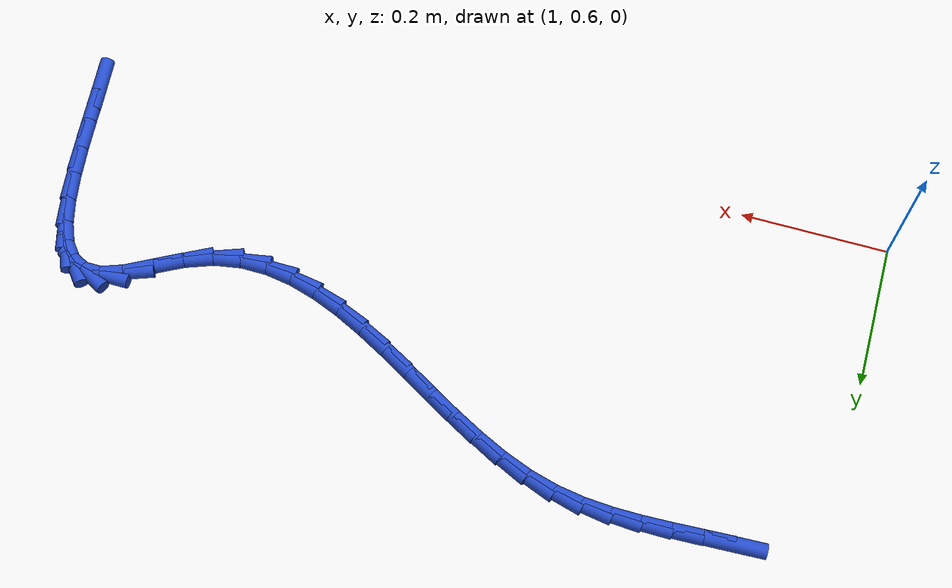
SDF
<sdf version="1.6">
 <world name="default">
  <model name="ground_plane">
   <static>1</static>
   <link name="link">
    <collision name="collision">
     <geometry><plane><normal>0 0 1</normal><size>100 100</size></plane></geometry>
     <surface><friction><ode><mu>100</mu><mu2>50</mu2></ode></friction></surface>
    </collision>
    <visual name="visual">
     <cast_shadows>0</cast_shadows>
     <geometry><plane><normal>0 0 1</normal><size>100 100</size></plane></geometry>
     <material>
      <script><uri>file://media/materials/scripts/gazebo.material</uri><name>Gazebo/WhiteGlow</name></script>
     </material>
    </visual>
   </link>
  </model>
  <model name="line">
   <link name="link_48">
    <pose>1.11131119343783 1.0561336119023135 0.01 0 1.57 0.05185267464040737</pose>
    <collision name="collision">
     <geometry><cylinder><radius>0.01</radius><length>0.08</length></cylinder></geometry>
    </collision>
    <visual name="visual">
     <material>
      <script><name>Gazebo/Blue</name><uri>file://media/materials/scripts/gazebo.material</uri></script>
     </material>
     <geometry><cylinder><radius>0.01</radius><length>0.08</length></cylinder></geometry>
    </visual>
   </link>
   <link name="link_49">
    <pose>1.151036047870899 1.0581952999391078 0.01 0 1.57 0.060190064966267096</pose>
    <collision name="collision">
     <geometry><cylinder><radius>0.01</radius><length>0.08</length></cylinder></geometry>
    </collision>
    <visual name="visual">
     <material>
      <script><name>Gazebo/Blue</name><uri>file://media/materials/scripts/gazebo.material</uri></script>
     </material>
     <geometry><cylinder><radius>0.01</radius><length>0.08</length></cylinder></geometry>
    </visual>
   </link>
   <link name="link_50">
    <pose>1.1900952740820598 1.060549120497224 0.01 0 1.57 0.04475264383107879</pose>
    <collision name="collision">
     <geometry><cylinder><radius>0.01</radius><length>0.08</length></cylinder></geometry>
    </collision>
    <visual name="visual">
     <material>
      <script><name>Gazebo/Blue</name><uri>file://media/materials/scripts/gazebo.material</uri></script>
     </material>
     <geometry><cylinder><radius>0.01</radius><length>0.08</length></cylinder></geometry>
    </visual>
   </link>
   <link name="link_51">
    <pose>1.2286015604026614 1.0622735299831996 0.01 0 1.57 0.004556650593403881</pose>
    <collision name="collision">
     <geometry><cylinder><radius>0.01</radius><length>0.08</length></cylinder></geometry>
    </collision>
    <visual name="visual">
     <material>
      <script><name>Gazebo/Blue</name><uri>file://media/materials/scripts/gazebo.material</uri></script>
     </material>
     <geometry><cylinder><radius>0.01</radius><length>0.08</length></cylinder></geometry>
    </visual>
   </link>
   <link name="link_52">
    <pose>1.266667595164052 1.0624469848035698 0.01 0 1.57 -0.060845220206124255</pose>
    <collision name="collision">
     <geometry><cylinder><radius>0.01</radius><length>0.08</length></cylinder></geometry>
    </collision>
    <visual name="visual">
     <material>
      <script><name>Gazebo/Blue</name><uri>file://media/materials/scripts/gazebo.material</uri></script>
     </material>
     <geometry><cylinder><radius>0.01</radius><length>0.08</length></cylinder></geometry>
    </visual>
   </link>
   <link name="link_53">
    <pose>1.30440606669758 1.0601479413648711 0.01 0 1.57 -0.1505718089831201</pose>
    <collision name="collision">
     <geometry><cylinder><radius>0.01</radius><length>0.08</length></cylinder></geometry>
    </collision>
    <visual name="visual">
     <material>
      <script><name>Gazebo/Blue</name><uri>file://media/materials/scripts/gazebo.material</uri></script>
     </material>
     <geometry><cylinder><radius>0.01</radius><length>0.08</length></cylinder></geometry>
    </visual>
   </link>
   <link name="link_54">
    <pose>1.3419296633345938 1.0544548560736393 0.01 0 1.57 -0.2596410427195901</pose>
    <collision name="collision">
     <geometry><cylinder><radius>0.01</radius><length>0.08</length></cylinder></geometry>
    </collision>
    <visual name="visual">
     <material>
      <script><name>Gazebo/Blue</name><uri>file://media/materials/scripts/gazebo.material</uri></script>
     </material>
     <geometry><cylinder><radius>0.01</radius><length>0.08</length></cylinder></geometry>
    </visual>
   </link>
   <link name="link_55">
    <pose>1.379347017007223 1.0445154143154243 0.01 0 1.57 -0.3595870499645327</pose>
    <collision name="collision">
     <geometry><cylinder><radius>0.01</radius><length>0.08</length></cylinder></geometry>
    </collision>
    <visual name="visual">
     <material>
      <script><name>Gazebo/Blue</name><uri>file://media/materials/scripts/gazebo.material</uri></script>
     </material>
     <geometry><cylinder><radius>0.01</radius><length>0.08</length></cylinder></geometry>
    </visual>
   </link>
   <link name="link_56">
    <pose>1.4167085922039224 1.03047002248785 0.01 0 1.57 -0.43344471882655145</pose>
    <collision name="collision">
     <geometry><cylinder><radius>0.01</radius><length>0.08</length></cylinder></geometry>
    </collision>
    <visual name="visual">
     <material>
      <script><name>Gazebo/Blue</name><uri>file://media/materials/scripts/gazebo.material</uri></script>
     </material>
     <geometry><cylinder><radius>0.01</radius><length>0.08</length></cylinder></geometry>
    </visual>
   </link>
   <link name="link_57">
    <pose>1.4540213348639976 1.013201801046844 0.01 0 1.57 -0.4839385955201175</pose>
    <collision name="collision">
     <geometry><cylinder><radius>0.01</radius><length>0.08</length></cylinder></geometry>
    </collision>
    <visual name="visual">
     <material>
      <script><name>Gazebo/Blue</name><uri>file://media/materials/scripts/gazebo.material</uri></script>
     </material>
     <geometry><cylinder><radius>0.01</radius><length>0.08</length></cylinder></geometry>
    </visual>
   </link>
   <link name="link_58">
    <pose>1.4912911418374926 0.9936117748444716 0.01 0 1.57 -0.5137630004267688</pose>
    <collision name="collision">
     <geometry><cylinder><radius>0.01</radius><length>0.08</length></cylinder></geometry>
    </collision>
    <visual name="visual">
     <material>
      <script><name>Gazebo/Blue</name><uri>file://media/materials/scripts/gazebo.material</uri></script>
     </material>
     <geometry><cylinder><radius>0.01</radius><length>0.08</length></cylinder></geometry>
    </visual>
   </link>
   <link name="link_59">
    <pose>1.528523909974453 0.972600968732796 0.01 0 1.57 -0.52465035442699</pose>
    <collision name="collision">
     <geometry><cylinder><radius>0.01</radius><length>0.08</length></cylinder></geometry>
    </collision>
    <visual name="visual">
     <material>
      <script><name>Gazebo/Blue</name><uri>file://media/materials/scripts/gazebo.material</uri></script>
     </material>
     <geometry><cylinder><radius>0.01</radius><length>0.08</length></cylinder></geometry>
    </visual>
   </link>
   <link name="link_60">
    <pose>1.565725536124922 0.951070407563882 0.01 0 1.57 -0.5172307353071692</pose>
    <collision name="collision">
     <geometry><cylinder><radius>0.01</radius><length>0.08</length></cylinder></geometry>
    </collision>
    <visual name="visual">
     <material>
      <script><name>Gazebo/Blue</name><uri>file://media/materials/scripts/gazebo.material</uri></script>
     </material>
     <geometry><cylinder><radius>0.01</radius><length>0.08</length></cylinder></geometry>
    </visual>
   </link>
   <link name="link_61">
    <pose>1.6029019171389443 0.9299211161897938 0.01 0 1.57 -0.49100255553708755</pose>
    <collision name="collision">
     <geometry><cylinder><radius>0.01</radius><length>0.08</length></cylinder></geometry>
    </collision>
    <visual name="visual">
     <material>
      <script><name>Gazebo/Blue</name><uri>file://media/materials/scripts/gazebo.material</uri></script>
     </material>
     <geometry><cylinder><radius>0.01</radius><length>0.08</length></cylinder></geometry>
    </visual>
   </link>
   <link name="link_62">
    <pose>1.6400589498665648 0.9100541194625957 0.01 0 1.57 -0.44433707481541196</pose>
    <collision name="collision">
     <geometry><cylinder><radius>0.01</radius><length>0.08</length></cylinder></geometry>
    </collision>
    <visual name="visual">
     <material>
      <script><name>Gazebo/Blue</name><uri>file://media/materials/scripts/gazebo.material</uri></script>
     </material>
     <geometry><cylinder><radius>0.01</radius><length>0.08</length></cylinder></geometry>
    </visual>
   </link>
   <link name="link_63">
    <pose>1.677202531157827 0.8923704422343516 0.01 0 1.57 -0.3745710589164938</pose>
    <collision name="collision">
     <geometry><cylinder><radius>0.01</radius><length>0.08</length></cylinder></geometry>
    </collision>
    <visual name="visual">
     <material>
      <script><name>Gazebo/Blue</name><uri>file://media/materials/scripts/gazebo.material</uri></script>
     </material>
     <geometry><cylinder><radius>0.01</radius><length>0.08</length></cylinder></geometry>
    </visual>
   </link>
   <link name="link_64">
    <pose>1.7143385578627766 0.8777711093571263 0.01 0 1.57 -0.2784028276761741</pose>
    <collision name="collision">
     <geometry><cylinder><radius>0.01</radius><length>0.08</length></cylinder></geometry>
    </collision>
    <visual name="visual">
     <material>
      <script><name>Gazebo/Blue</name><uri>file://media/materials/scripts/gazebo.material</uri></script>
     </material>
     <geometry><cylinder><radius>0.01</radius><length>0.08</length></cylinder></geometry>
    </visual>
   </link>
   <link name="link_65">
    <pose>1.7514729268314564 0.8671571456829839 0.01 0 1.57 -0.15301591674439308</pose>
    <collision name="collision">
     <geometry><cylinder><radius>0.01</radius><length>0.08</length></cylinder></geometry>
    </collision>
    <visual name="visual">
     <material>
      <script><name>Gazebo/Blue</name><uri>file://media/materials/scripts/gazebo.material</uri></script>
     </material>
     <geometry><cylinder><radius>0.01</radius><length>0.08</length></cylinder></geometry>
    </visual>
   </link>
   <link name="link_66">
    <pose>1.7886115349139116 0.8614295760639881 0.01 0 1.57 0.001611070252086605</pose>
    <collision name="collision">
     <geometry><cylinder><radius>0.01</radius><length>0.08</length></cylinder></geometry>
    </collision>
    <visual name="visual">
     <material>
      <script><name>Gazebo/Blue</name><uri>file://media/materials/scripts/gazebo.material</uri></script>
     </material>
     <geometry><cylinder><radius>0.01</radius><length>0.08</length></cylinder></geometry>
    </visual>
   </link>
   <link name="link_67">
    <pose>1.8257602789601868 0.861489425352204 0.01 0 1.57 0.17962066041309616</pose>
    <collision name="collision">
     <geometry><cylinder><radius>0.01</radius><length>0.08</length></cylinder></geometry>
    </collision>
    <visual name="visual">
     <material>
      <script><name>Gazebo/Blue</name><uri>file://media/materials/scripts/gazebo.material</uri></script>
     </material>
     <geometry><cylinder><radius>0.01</radius><length>0.08</length></cylinder></geometry>
    </visual>
   </link>
   <link name="link_68">
    <pose>1.8629250558203254 0.868237718399695 0.01 0 1.57 0.3672955735753101</pose>
    <collision name="collision">
     <geometry><cylinder><radius>0.01</radius><length>0.08</length></cylinder></geometry>
    </collision>
    <visual name="visual">
     <material>
      <script><name>Gazebo/Blue</name><uri>file://media/materials/scripts/gazebo.material</uri></script>
     </material>
     <geometry><cylinder><radius>0.01</radius><length>0.08</length></cylinder></geometry>
    </visual>
   </link>
   <link name="link_69">
    <pose>1.9001036048585975 0.8825423562308676 0.01 0 1.57 0.5007830896402232</pose>
    <collision name="collision">
     <geometry><cylinder><radius>0.01</radius><length>0.08</length></cylinder></geometry>
    </collision>
    <visual name="visual">
     <material>
      <script><name>Gazebo/Blue</name><uri>file://media/materials/scripts/gazebo.material</uri></script>
     </material>
     <geometry><cylinder><radius>0.01</radius><length>0.08</length></cylinder></geometry>
    </visual>
   </link>
   <link name="link_70">
    <pose>1.9366179243236898 0.9025273635249522 0.01 0 1.57 0.5103180121765475</pose>
    <collision name="collision">
     <geometry><cylinder><radius>0.01</radius><length>0.08</length></cylinder></geometry>
    </collision>
    <visual name="visual">
     <material>
      <script><name>Gazebo/Blue</name><uri>file://media/materials/scripts/gazebo.material</uri></script>
     </material>
     <geometry><cylinder><radius>0.01</radius><length>0.08</length></cylinder></geometry>
    </visual>
   </link>
   <link name="link_71">
    <pose>1.970618583604654 0.9215601268583805 0.01 0 1.57 0.3598792361011764</pose>
    <collision name="collision">
     <geometry><cylinder><radius>0.01</radius><length>0.08</length></cylinder></geometry>
    </collision>
    <visual name="visual">
     <material>
      <script><name>Gazebo/Blue</name><uri>file://media/materials/scripts/gazebo.material</uri></script>
     </material>
     <geometry><cylinder><radius>0.01</radius><length>0.08</length></cylinder></geometry>
    </visual>
   </link>
   <link name="link_72">
    <pose>2.0001878892461984 0.9326860211810064 0.01 0 1.57 0.0037300558326342683</pose>
    <collision name="collision">
     <geometry><cylinder><radius>0.01</radius><length>0.08</length></cylinder></geometry>
    </collision>
    <visual name="visual">
     <material>
      <script><name>Gazebo/Blue</name><uri>file://media/materials/scripts/gazebo.material</uri></script>
     </material>
     <geometry><cylinder><radius>0.01</radius><length>0.08</length></cylinder></geometry>
    </visual>
   </link>
   <link name="link_73">
    <pose>2.024628020341558 0.9327771846573448 0.01 0 1.57 -0.4679993530930293</pose>
    <collision name="collision">
     <geometry><cylinder><radius>0.01</radius><length>0.08</length></cylinder></geometry>
    </collision>
    <visual name="visual">
     <material>
      <script><name>Gazebo/Blue</name><uri>file://media/materials/scripts/gazebo.material</uri></script>
     </material>
     <geometry><cylinder><radius>0.01</radius><length>0.08</length></cylinder></geometry>
    </visual>
   </link>
   <link name="link_74">
    <pose>2.044521438283895 0.9227220251971822 0.01 0 1.57 -0.8743917980743511</pose>
    <collision name="collision">
     <geometry><cylinder><radius>0.01</radius><length>0.08</length></cylinder></geometry>
    </collision>
    <visual name="visual">
     <material>
      <script><name>Gazebo/Blue</name><uri>file://media/materials/scripts/gazebo.material</uri></script>
     </material>
     <geometry><cylinder><radius>0.01</radius><length>0.08</length></cylinder></geometry>
    </visual>
   </link>
   <link name="link_75">
    <pose>2.06051123468797 0.9035991488601016 0.01 0 1.57 -1.1318393550662698</pose>
    <collision name="collision">
     <geometry><cylinder><radius>0.01</radius><length>0.08</length></cylinder></geometry>
    </collision>
    <visual name="visual">
     <material>
      <script><name>Gazebo/Blue</name><uri>file://media/materials/scripts/gazebo.material</uri></script>
     </material>
     <geometry><cylinder><radius>0.01</radius><length>0.08</length></cylinder></geometry>
    </visual>
   </link>
   <link name="link_76">
    <pose>2.0732405011685424 0.8764871617056855 0.01 0 1.57 -1.2819010362793966</pose>
    <collision name="collision">
     <geometry><cylinder><radius>0.01</radius><length>0.08</length></cylinder></geometry>
    </collision>
    <visual name="visual">
     <material>
      <script><name>Gazebo/Blue</name><uri>file://media/materials/scripts/gazebo.material</uri></script>
     </material>
     <geometry><cylinder><radius>0.01</radius><length>0.08</length></cylinder></geometry>
    </visual>
   </link>
   <link name="link_77">
    <pose>2.0833523293403733 0.842464669793517 0.01 0 1.57 -1.3693844968952027</pose>
    <collision name="collision">
     <geometry><cylinder><radius>0.01</radius><length>0.08</length></cylinder></geometry>
    </collision>
    <visual name="visual">
     <material>
      <script><name>Gazebo/Blue</name><uri>file://media/materials/scripts/gazebo.material</uri></script>
     </material>
     <geometry><cylinder><radius>0.01</radius><length>0.08</length></cylinder></geometry>
    </visual>
   </link>
   <link name="link_78">
    <pose>2.091489810818226 0.8026102791831793 0.01 0 1.57 -1.4193844165583134</pose>
    <collision name="collision">
     <geometry><cylinder><radius>0.01</radius><length>0.08</length></cylinder></geometry>
    </collision>
    <visual name="visual">
     <material>
      <script><name>Gazebo/Blue</name><uri>file://media/materials/scripts/gazebo.material</uri></script>
     </material>
     <geometry><cylinder><radius>0.01</radius><length>0.08</length></cylinder></geometry>
    </visual>
   </link>
   <link name="link_79">
    <pose>2.098296037216859 0.7580025959342547 0.01 0 1.57 -1.4447538404211673</pose>
    <collision name="collision">
     <geometry><cylinder><radius>0.01</radius><length>0.08</length></cylinder></geometry>
    </collision>
    <visual name="visual">
     <material>
      <script><name>Gazebo/Blue</name><uri>file://media/materials/scripts/gazebo.material</uri></script>
     </material>
     <geometry><cylinder><radius>0.01</radius><length>0.08</length></cylinder></geometry>
    </visual>
   </link>
   <link name="link_80">
    <pose>2.104414100151034 0.7097202261063265 0.01 0 1.57 -1.4519956647999719</pose>
    <collision name="collision">
     <geometry><cylinder><radius>0.01</radius><length>0.08</length></cylinder></geometry>
    </collision>
    <visual name="visual">
     <material>
      <script><name>Gazebo/Blue</name><uri>file://media/materials/scripts/gazebo.material</uri></script>
     </material>
     <geometry><cylinder><radius>0.01</radius><length>0.08</length></cylinder></geometry>
    </visual>
   </link>
   <link name="link_81">
    <pose>2.110487091235512 0.6588417757589773 0.01 0 1.57 -1.4441583998516991</pose>
    <collision name="collision">
     <geometry><cylinder><radius>0.01</radius><length>0.08</length></cylinder></geometry>
    </collision>
    <visual name="visual">
     <material>
      <script><name>Gazebo/Blue</name><uri>file://media/materials/scripts/gazebo.material</uri></script>
     </material>
     <geometry><cylinder><radius>0.01</radius><length>0.08</length></cylinder></geometry>
    </visual>
   </link>
  </model>
 </world>
</sdf>
